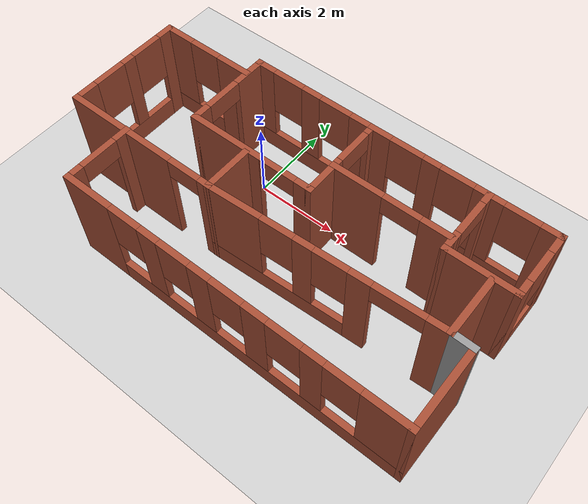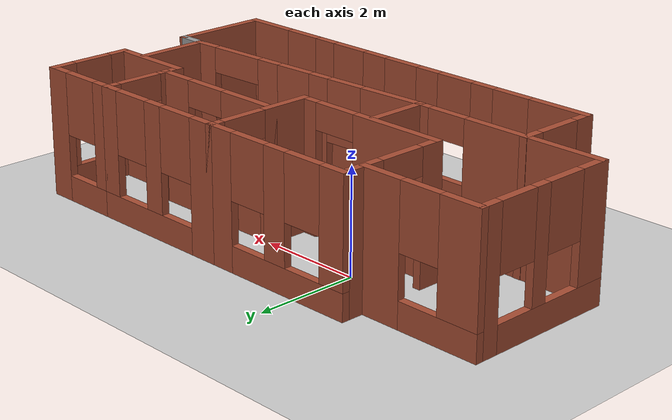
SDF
<sdf version="1.6">
 <world name="default">
  <model name="ground_plane">
   <static>1</static>
   <link name="link">
    <collision name="collision">
     <geometry><plane><normal>0 0 1</normal><size>100 100</size></plane></geometry>
     <surface><friction><ode><mu>100</mu><mu2>50</mu2></ode></friction></surface>
    </collision>
    <visual name="visual">
     <transparency>1</transparency>
     <cast_shadows>0</cast_shadows>
     <geometry><plane><normal>0 0 1</normal><size>100 100</size></plane></geometry>
     <material>
      <script><uri>file://media/materials/scripts/gazebo.material</uri><name>Gazebo/Grey</name></script>
     </material>
    </visual>
   </link>
  </model>
  <model name="new_building">
   <pose>1.52799 -1.2 0 0 -0 0</pose>
   <link name="Wall_46">
    <pose>-1.035 2.44 0 0 -0 3.14159</pose>
    <visual name="Wall_46_Visual_0">
     <pose>-1.3125 0 1.25 0 -0 0</pose>
     <geometry><box><size>0.625 0.15 2.5</size></box></geometry>
     <material>
      <script><uri>file://media/materials/scripts/gazebo.material</uri><name>Gazebo/Bricks</name></script>
      <ambient>1 1 1 1</ambient>
     </material>
     <meta><layer>0</layer></meta>
    </visual>
    <collision name="Wall_46_Collision_0">
     <geometry><box><size>0.625 0.15 2.5</size></box></geometry>
     <pose>-1.3125 0 1.25 0 -0 0</pose>
    </collision>
    <visual name="Wall_46_Visual_1">
     <pose>0.3125 0 0.25 0 -0 0</pose>
     <geometry><box><size>2.625 0.15 0.5</size></box></geometry>
     <material>
      <script><uri>file://media/materials/scripts/gazebo.material</uri><name>Gazebo/Bricks</name></script>
      <ambient>1 1 1 1</ambient>
     </material>
     <meta><layer>0</layer></meta>
    </visual>
    <collision name="Wall_46_Collision_1">
     <geometry><box><size>2.625 0.15 0.5</size></box></geometry>
     <pose>0.3125 0 0.25 0 -0 0</pose>
    </collision>
    <visual name="Wall_46_Visual_2">
     <pose>0.045 0 1.5 0 -0 0</pose>
     <geometry><box><size>0.49 0.15 2</size></box></geometry>
     <material>
      <script><uri>file://media/materials/scripts/gazebo.material</uri><name>Gazebo/Bricks</name></script>
      <ambient>1 1 1 1</ambient>
     </material>
     <meta><layer>0</layer></meta>
    </visual>
    <collision name="Wall_46_Collision_2">
     <geometry><box><size>0.49 0.15 2</size></box></geometry>
     <pose>0.045 0 1.5 0 -0 0</pose>
    </collision>
    <visual name="Wall_46_Visual_3">
     <pose>1.3575 0 1.5 0 -0 0</pose>
     <geometry><box><size>0.535 0.15 2</size></box></geometry>
     <material>
      <script><uri>file://media/materials/scripts/gazebo.material</uri><name>Gazebo/Bricks</name></script>
      <ambient>1 1 1 1</ambient>
     </material>
     <meta><layer>0</layer></meta>
    </visual>
    <collision name="Wall_46_Collision_3">
     <geometry><box><size>0.535 0.15 2</size></box></geometry>
     <pose>1.3575 0 1.5 0 -0 0</pose>
    </collision>
    <visual name="Wall_46_Visual_4">
     <pose>-0.6 0 1.9 0 -0 0</pose>
     <geometry><box><size>0.8 0.15 1.2</size></box></geometry>
     <material>
      <script><uri>file://media/materials/scripts/gazebo.material</uri><name>Gazebo/Bricks</name></script>
      <ambient>1 1 1 1</ambient>
     </material>
     <meta><layer>0</layer></meta>
    </visual>
    <collision name="Wall_46_Collision_4">
     <geometry><box><size>0.8 0.15 1.2</size></box></geometry>
     <pose>-0.6 0 1.9 0 -0 0</pose>
    </collision>
    <visual name="Wall_46_Visual_5">
     <pose>0.69 0 1.9 0 -0 0</pose>
     <geometry><box><size>0.8 0.15 1.2</size></box></geometry>
     <material>
      <script><uri>file://media/materials/scripts/gazebo.material</uri><name>Gazebo/Bricks</name></script>
      <ambient>1 1 1 1</ambient>
     </material>
     <meta><layer>0</layer></meta>
    </visual>
    <collision name="Wall_46_Collision_5">
     <geometry><box><size>0.8 0.15 1.2</size></box></geometry>
     <pose>0.69 0 1.9 0 -0 0</pose>
    </collision>
   </link>
   <link name="Wall_47">
    <pose>-2.585 1.39 0 0 0 -1.5708</pose>
    <visual name="Wall_47_Visual_0">
     <pose>-0.6875 0 1.25 0 -0 0</pose>
     <geometry><box><size>0.875 0.15 2.5</size></box></geometry>
     <material>
      <script><uri>file://media/materials/scripts/gazebo.material</uri><name>Gazebo/Bricks</name></script>
      <ambient>1 1 1 1</ambient>
     </material>
     <meta><layer>0</layer></meta>
    </visual>
    <collision name="Wall_47_Collision_0">
     <geometry><box><size>0.875 0.15 2.5</size></box></geometry>
     <pose>-0.6875 0 1.25 0 -0 0</pose>
    </collision>
    <visual name="Wall_47_Visual_1">
     <pose>0.8875 0 1.25 0 -0 0</pose>
     <geometry><box><size>0.475 0.15 2.5</size></box></geometry>
     <material>
      <script><uri>file://media/materials/scripts/gazebo.material</uri><name>Gazebo/Bricks</name></script>
      <ambient>1 1 1 1</ambient>
     </material>
     <meta><layer>0</layer></meta>
    </visual>
    <collision name="Wall_47_Collision_1">
     <geometry><box><size>0.475 0.15 2.5</size></box></geometry>
     <pose>0.8875 0 1.25 0 -0 0</pose>
    </collision>
    <visual name="Wall_47_Visual_2">
     <pose>0.2 0 2.25 0 -0 0</pose>
     <geometry><box><size>0.9 0.15 0.5</size></box></geometry>
     <material>
      <script><uri>file://media/materials/scripts/gazebo.material</uri><name>Gazebo/Bricks</name></script>
      <ambient>1 1 1 1</ambient>
     </material>
     <meta><layer>0</layer></meta>
    </visual>
    <collision name="Wall_47_Collision_2">
     <geometry><box><size>0.9 0.15 0.5</size></box></geometry>
     <pose>0.2 0 2.25 0 -0 0</pose>
    </collision>
   </link>
   <link name="Wall_51">
    <pose>-1.035 0.34 0 0 -0 0</pose>
    <visual name="Wall_51_Visual_0">
     <pose>-0.6725 0 1.25 0 -0 0</pose>
     <geometry><box><size>1.905 0.15 2.5</size></box></geometry>
     <material>
      <script><uri>file://media/materials/scripts/gazebo.material</uri><name>Gazebo/Bricks</name></script>
      <ambient>1 1 1 1</ambient>
     </material>
     <meta><layer>0</layer></meta>
    </visual>
    <collision name="Wall_51_Collision_0">
     <geometry><box><size>1.905 0.15 2.5</size></box></geometry>
     <pose>-0.6725 0 1.25 0 -0 0</pose>
    </collision>
    <visual name="Wall_51_Visual_1">
     <pose>1.4025 0 1.25 0 -0 0</pose>
     <geometry><box><size>0.445 0.15 2.5</size></box></geometry>
     <material>
      <script><uri>file://media/materials/scripts/gazebo.material</uri><name>Gazebo/Bricks</name></script>
      <ambient>1 1 1 1</ambient>
     </material>
     <meta><layer>0</layer></meta>
    </visual>
    <collision name="Wall_51_Collision_1">
     <geometry><box><size>0.445 0.15 2.5</size></box></geometry>
     <pose>1.4025 0 1.25 0 -0 0</pose>
    </collision>
    <visual name="Wall_51_Visual_2">
     <pose>0.73 0 2.25 0 -0 0</pose>
     <geometry><box><size>0.9 0.15 0.5</size></box></geometry>
     <material>
      <script><uri>file://media/materials/scripts/gazebo.material</uri><name>Gazebo/Bricks</name></script>
      <ambient>1 1 1 1</ambient>
     </material>
     <meta><layer>0</layer></meta>
    </visual>
    <collision name="Wall_51_Collision_2">
     <geometry><box><size>0.9 0.15 0.5</size></box></geometry>
     <pose>0.73 0 2.25 0 -0 0</pose>
    </collision>
   </link>
   <link name="Wall_52">
    <pose>0.515 1.39 0 0 -0 1.5708</pose>
    <visual name="Wall_52_Visual_0">
     <pose>-0.5975 0 1.25 0 -0 0</pose>
     <geometry><box><size>1.055 0.15 2.5</size></box></geometry>
     <material>
      <script><uri>file://media/materials/scripts/gazebo.material</uri><name>Gazebo/Bricks</name></script>
      <ambient>1 1 1 1</ambient>
     </material>
     <meta><layer>0</layer></meta>
    </visual>
    <collision name="Wall_52_Collision_0">
     <geometry><box><size>1.055 0.15 2.5</size></box></geometry>
     <pose>-0.5975 0 1.25 0 -0 0</pose>
    </collision>
    <visual name="Wall_52_Visual_1">
     <pose>0.9775 0 1.25 0 -0 0</pose>
     <geometry><box><size>0.295 0.15 2.5</size></box></geometry>
     <material>
      <script><uri>file://media/materials/scripts/gazebo.material</uri><name>Gazebo/Bricks</name></script>
      <ambient>1 1 1 1</ambient>
     </material>
     <meta><layer>0</layer></meta>
    </visual>
    <collision name="Wall_52_Collision_1">
     <geometry><box><size>0.295 0.15 2.5</size></box></geometry>
     <pose>0.9775 0 1.25 0 -0 0</pose>
    </collision>
    <visual name="Wall_52_Visual_2">
     <pose>0.38 0 2.25 0 -0 0</pose>
     <geometry><box><size>0.9 0.15 0.5</size></box></geometry>
     <material>
      <script><uri>file://media/materials/scripts/gazebo.material</uri><name>Gazebo/Bricks</name></script>
      <ambient>1 1 1 1</ambient>
     </material>
     <meta><layer>0</layer></meta>
    </visual>
    <collision name="Wall_52_Collision_2">
     <geometry><box><size>0.9 0.15 0.5</size></box></geometry>
     <pose>0.38 0 2.25 0 -0 0</pose>
    </collision>
   </link>
   <link name="Wall_53">
    <pose>1.94 2.44 0 0 -0 0</pose>
    <visual name="Wall_53_Visual_0">
     <pose>-1.2125 0 1.25 0 -0 0</pose>
     <geometry><box><size>0.575 0.15 2.5</size></box></geometry>
     <material>
      <script><uri>file://media/materials/scripts/gazebo.material</uri><name>Gazebo/Bricks</name></script>
      <ambient>1 1 1 1</ambient>
     </material>
     <meta><layer>0</layer></meta>
    </visual>
    <collision name="Wall_53_Collision_0">
     <geometry><box><size>0.575 0.15 2.5</size></box></geometry>
     <pose>-1.2125 0 1.25 0 -0 0</pose>
    </collision>
    <visual name="Wall_53_Visual_1">
     <pose>0.2875 0 0.25 0 -0 0</pose>
     <geometry><box><size>2.425 0.15 0.5</size></box></geometry>
     <material>
      <script><uri>file://media/materials/scripts/gazebo.material</uri><name>Gazebo/Bricks</name></script>
      <ambient>1 1 1 1</ambient>
     </material>
     <meta><layer>0</layer></meta>
    </visual>
    <collision name="Wall_53_Collision_1">
     <geometry><box><size>2.425 0.15 0.5</size></box></geometry>
     <pose>0.2875 0 0.25 0 -0 0</pose>
    </collision>
    <visual name="Wall_53_Visual_2">
     <pose>0.085 0 1.5 0 -0 0</pose>
     <geometry><box><size>0.42 0.15 2</size></box></geometry>
     <material>
      <script><uri>file://media/materials/scripts/gazebo.material</uri><name>Gazebo/Bricks</name></script>
      <ambient>1 1 1 1</ambient>
     </material>
     <meta><layer>0</layer></meta>
    </visual>
    <collision name="Wall_53_Collision_2">
     <geometry><box><size>0.42 0.15 2</size></box></geometry>
     <pose>0.085 0 1.5 0 -0 0</pose>
    </collision>
    <visual name="Wall_53_Visual_3">
     <pose>1.2975 0 1.5 0 -0 0</pose>
     <geometry><box><size>0.405 0.15 2</size></box></geometry>
     <material>
      <script><uri>file://media/materials/scripts/gazebo.material</uri><name>Gazebo/Bricks</name></script>
      <ambient>1 1 1 1</ambient>
     </material>
     <meta><layer>0</layer></meta>
    </visual>
    <collision name="Wall_53_Collision_3">
     <geometry><box><size>0.405 0.15 2</size></box></geometry>
     <pose>1.2975 0 1.5 0 -0 0</pose>
    </collision>
    <visual name="Wall_53_Visual_4">
     <pose>-0.525 0 1.9 0 -0 0</pose>
     <geometry><box><size>0.8 0.15 1.2</size></box></geometry>
     <material>
      <script><uri>file://media/materials/scripts/gazebo.material</uri><name>Gazebo/Bricks</name></script>
      <ambient>1 1 1 1</ambient>
     </material>
     <meta><layer>0</layer></meta>
    </visual>
    <collision name="Wall_53_Collision_4">
     <geometry><box><size>0.8 0.15 1.2</size></box></geometry>
     <pose>-0.525 0 1.9 0 -0 0</pose>
    </collision>
    <visual name="Wall_53_Visual_5">
     <pose>0.695 0 1.9 0 -0 0</pose>
     <geometry><box><size>0.8 0.15 1.2</size></box></geometry>
     <material>
      <script><uri>file://media/materials/scripts/gazebo.material</uri><name>Gazebo/Bricks</name></script>
      <ambient>1 1 1 1</ambient>
     </material>
     <meta><layer>0</layer></meta>
    </visual>
    <collision name="Wall_53_Collision_5">
     <geometry><box><size>0.8 0.15 1.2</size></box></geometry>
     <pose>0.695 0 1.9 0 -0 0</pose>
    </collision>
   </link>
   <link name="Wall_54">
    <pose>3.365 1.64 0 0 0 -1.5708</pose>
    <visual name="Wall_54_Visual_0">
     <pose>-0.7175 0 1.25 0 -0 0</pose>
     <geometry><box><size>0.315 0.15 2.5</size></box></geometry>
     <material>
      <script><uri>file://media/materials/scripts/gazebo.material</uri><name>Gazebo/Bricks</name></script>
      <ambient>1 1 1 1</ambient>
     </material>
     <meta><layer>0</layer></meta>
    </visual>
    <collision name="Wall_54_Collision_0">
     <geometry><box><size>0.315 0.15 2.5</size></box></geometry>
     <pose>-0.7175 0 1.25 0 -0 0</pose>
    </collision>
    <visual name="Wall_54_Visual_1">
     <pose>0.6075 0 1.25 0 -0 0</pose>
     <geometry><box><size>0.535 0.15 2.5</size></box></geometry>
     <material>
      <script><uri>file://media/materials/scripts/gazebo.material</uri><name>Gazebo/Bricks</name></script>
      <ambient>1 1 1 1</ambient>
     </material>
     <meta><layer>0</layer></meta>
    </visual>
    <collision name="Wall_54_Collision_1">
     <geometry><box><size>0.535 0.15 2.5</size></box></geometry>
     <pose>0.6075 0 1.25 0 -0 0</pose>
    </collision>
    <visual name="Wall_54_Visual_2">
     <pose>-0.11 0 2.25 0 -0 0</pose>
     <geometry><box><size>0.9 0.15 0.5</size></box></geometry>
     <material>
      <script><uri>file://media/materials/scripts/gazebo.material</uri><name>Gazebo/Bricks</name></script>
      <ambient>1 1 1 1</ambient>
     </material>
     <meta><layer>0</layer></meta>
    </visual>
    <collision name="Wall_54_Collision_2">
     <geometry><box><size>0.9 0.15 0.5</size></box></geometry>
     <pose>-0.11 0 2.25 0 -0 0</pose>
    </collision>
   </link>
   <link name="Wall_55">
    <collision name="Wall_55_Collision">
     <geometry><box><size>1.75 0.15 2.5</size></box></geometry>
     <pose>0 0 1.25 0 -0 0</pose>
    </collision>
    <visual name="Wall_55_Visual">
     <pose>0 0 1.25 0 -0 0</pose>
     <geometry><box><size>1.75 0.15 2.5</size></box></geometry>
     <material>
      <script><uri>file://media/materials/scripts/gazebo.material</uri><name>Gazebo/Bricks</name></script>
      <ambient>1 1 1 1</ambient>
     </material>
     <meta><layer>0</layer></meta>
    </visual>
    <pose>4.165 0.84 0 0 -0 0</pose>
   </link>
   <link name="Wall_56">
    <pose>4.965 1.64 0 0 -0 1.5708</pose>
    <visual name="Wall_56_Visual_0">
     <pose>-0.6525 0 1.25 0 -0 0</pose>
     <geometry><box><size>0.445 0.15 2.5</size></box></geometry>
     <material>
      <script><uri>file://media/materials/scripts/gazebo.material</uri><name>Gazebo/Bricks</name></script>
      <ambient>1 1 1 1</ambient>
     </material>
     <meta><layer>0</layer></meta>
    </visual>
    <collision name="Wall_56_Collision_0">
     <geometry><box><size>0.445 0.15 2.5</size></box></geometry>
     <pose>-0.6525 0 1.25 0 -0 0</pose>
    </collision>
    <visual name="Wall_56_Visual_1">
     <pose>0.2225 0 0.25 0 -0 0</pose>
     <geometry><box><size>1.305 0.15 0.5</size></box></geometry>
     <material>
      <script><uri>file://media/materials/scripts/gazebo.material</uri><name>Gazebo/Bricks</name></script>
      <ambient>1 1 1 1</ambient>
     </material>
     <meta><layer>0</layer></meta>
    </visual>
    <collision name="Wall_56_Collision_1">
     <geometry><box><size>1.305 0.15 0.5</size></box></geometry>
     <pose>0.2225 0 0.25 0 -0 0</pose>
    </collision>
    <visual name="Wall_56_Visual_2">
     <pose>0.6225 0 1.5 0 -0 0</pose>
     <geometry><box><size>0.505 0.15 2</size></box></geometry>
     <material>
      <script><uri>file://media/materials/scripts/gazebo.material</uri><name>Gazebo/Bricks</name></script>
      <ambient>1 1 1 1</ambient>
     </material>
     <meta><layer>0</layer></meta>
    </visual>
    <collision name="Wall_56_Collision_2">
     <geometry><box><size>0.505 0.15 2</size></box></geometry>
     <pose>0.6225 0 1.5 0 -0 0</pose>
    </collision>
    <visual name="Wall_56_Visual_3">
     <pose>-0.03 0 1.9 0 -0 0</pose>
     <geometry><box><size>0.8 0.15 1.2</size></box></geometry>
     <material>
      <script><uri>file://media/materials/scripts/gazebo.material</uri><name>Gazebo/Bricks</name></script>
      <ambient>1 1 1 1</ambient>
     </material>
     <meta><layer>0</layer></meta>
    </visual>
    <collision name="Wall_56_Collision_3">
     <geometry><box><size>0.8 0.15 1.2</size></box></geometry>
     <pose>-0.03 0 1.9 0 -0 0</pose>
    </collision>
   </link>
   <link name="Wall_57">
    <pose>4.165 2.44 0 0 0 -3.14159</pose>
    <visual name="Wall_57_Visual_0">
     <pose>-0.6175 0 1.25 0 -0 0</pose>
     <geometry><box><size>0.515 0.15 2.5</size></box></geometry>
     <material>
      <script><uri>file://media/materials/scripts/gazebo.material</uri><name>Gazebo/Bricks</name></script>
      <ambient>1 1 1 1</ambient>
     </material>
     <meta><layer>0</layer></meta>
    </visual>
    <collision name="Wall_57_Collision_0">
     <geometry><box><size>0.515 0.15 2.5</size></box></geometry>
     <pose>-0.6175 0 1.25 0 -0 0</pose>
    </collision>
    <visual name="Wall_57_Visual_1">
     <pose>0.2575 0 0.25 0 -0 0</pose>
     <geometry><box><size>1.235 0.15 0.5</size></box></geometry>
     <material>
      <script><uri>file://media/materials/scripts/gazebo.material</uri><name>Gazebo/Bricks</name></script>
      <ambient>1 1 1 1</ambient>
     </material>
     <meta><layer>0</layer></meta>
    </visual>
    <collision name="Wall_57_Collision_1">
     <geometry><box><size>1.235 0.15 0.5</size></box></geometry>
     <pose>0.2575 0 0.25 0 -0 0</pose>
    </collision>
    <visual name="Wall_57_Visual_2">
     <pose>0.6575 0 1.5 0 -0 0</pose>
     <geometry><box><size>0.435 0.15 2</size></box></geometry>
     <material>
      <script><uri>file://media/materials/scripts/gazebo.material</uri><name>Gazebo/Bricks</name></script>
      <ambient>1 1 1 1</ambient>
     </material>
     <meta><layer>0</layer></meta>
    </visual>
    <collision name="Wall_57_Collision_2">
     <geometry><box><size>0.435 0.15 2</size></box></geometry>
     <pose>0.6575 0 1.5 0 -0 0</pose>
    </collision>
    <visual name="Wall_57_Visual_3">
     <pose>0.04 0 1.9 0 -0 0</pose>
     <geometry><box><size>0.8 0.15 1.2</size></box></geometry>
     <material>
      <script><uri>file://media/materials/scripts/gazebo.material</uri><name>Gazebo/Bricks</name></script>
      <ambient>1 1 1 1</ambient>
     </material>
     <meta><layer>0</layer></meta>
    </visual>
    <collision name="Wall_57_Collision_3">
     <geometry><box><size>0.8 0.15 1.2</size></box></geometry>
     <pose>0.04 0 1.9 0 -0 0</pose>
    </collision>
   </link>
   <link name="Wall_59">
    <pose>1.94 1.12 0 0 -0 0</pose>
    <visual name="Wall_59_Visual_0">
     <pose>-0.8475 0 1.25 0 -0 0</pose>
     <geometry><box><size>1.305 0.15 2.5</size></box></geometry>
     <material>
      <script><uri>file://media/materials/scripts/gazebo.material</uri><name>Gazebo/Bricks</name></script>
      <ambient>1 1 1 1</ambient>
     </material>
     <meta><layer>0</layer></meta>
    </visual>
    <collision name="Wall_59_Collision_0">
     <geometry><box><size>1.305 0.15 2.5</size></box></geometry>
     <pose>-0.8475 0 1.25 0 -0 0</pose>
    </collision>
    <visual name="Wall_59_Visual_1">
     <pose>1.1025 0 1.25 0 -0 0</pose>
     <geometry><box><size>0.795 0.15 2.5</size></box></geometry>
     <material>
      <script><uri>file://media/materials/scripts/gazebo.material</uri><name>Gazebo/Bricks</name></script>
      <ambient>1 1 1 1</ambient>
     </material>
     <meta><layer>0</layer></meta>
    </visual>
    <collision name="Wall_59_Collision_1">
     <geometry><box><size>0.795 0.15 2.5</size></box></geometry>
     <pose>1.1025 0 1.25 0 -0 0</pose>
    </collision>
    <visual name="Wall_59_Visual_2">
     <pose>0.255 0 2.25 0 -0 0</pose>
     <geometry><box><size>0.9 0.15 0.5</size></box></geometry>
     <material>
      <script><uri>file://media/materials/scripts/gazebo.material</uri><name>Gazebo/Bricks</name></script>
      <ambient>1 1 1 1</ambient>
     </material>
     <meta><layer>0</layer></meta>
    </visual>
    <collision name="Wall_59_Collision_2">
     <geometry><box><size>0.9 0.15 0.5</size></box></geometry>
     <pose>0.255 0 2.25 0 -0 0</pose>
    </collision>
   </link>
   <link name="Wall_61">
    <pose>-3.79 2 0 0 -0 3.14159</pose>
    <visual name="Wall_61_Visual_0">
     <pose>-0.8075 0 1.25 0 -0 0</pose>
     <geometry><box><size>0.885 0.15 2.5</size></box></geometry>
     <material>
      <script><uri>file://media/materials/scripts/gazebo.material</uri><name>Gazebo/Bricks</name></script>
      <ambient>1 1 1 1</ambient>
     </material>
     <meta><layer>0</layer></meta>
    </visual>
    <collision name="Wall_61_Collision_0">
     <geometry><box><size>0.885 0.15 2.5</size></box></geometry>
     <pose>-0.8075 0 1.25 0 -0 0</pose>
    </collision>
    <visual name="Wall_61_Visual_1">
     <pose>0.4425 0 0.25 0 -0 0</pose>
     <geometry><box><size>1.615 0.15 0.5</size></box></geometry>
     <material>
      <script><uri>file://media/materials/scripts/gazebo.material</uri><name>Gazebo/Bricks</name></script>
      <ambient>1 1 1 1</ambient>
     </material>
     <meta><layer>0</layer></meta>
    </visual>
    <collision name="Wall_61_Collision_1">
     <geometry><box><size>1.615 0.15 0.5</size></box></geometry>
     <pose>0.4425 0 0.25 0 -0 0</pose>
    </collision>
    <visual name="Wall_61_Visual_2">
     <pose>0.8425 0 1.5 0 -0 0</pose>
     <geometry><box><size>0.815 0.15 2</size></box></geometry>
     <material>
      <script><uri>file://media/materials/scripts/gazebo.material</uri><name>Gazebo/Bricks</name></script>
      <ambient>1 1 1 1</ambient>
     </material>
     <meta><layer>0</layer></meta>
    </visual>
    <collision name="Wall_61_Collision_2">
     <geometry><box><size>0.815 0.15 2</size></box></geometry>
     <pose>0.8425 0 1.5 0 -0 0</pose>
    </collision>
    <visual name="Wall_61_Visual_3">
     <pose>0.035 0 1.9 0 -0 0</pose>
     <geometry><box><size>0.8 0.15 1.2</size></box></geometry>
     <material>
      <script><uri>file://media/materials/scripts/gazebo.material</uri><name>Gazebo/Bricks</name></script>
      <ambient>1 1 1 1</ambient>
     </material>
     <meta><layer>0</layer></meta>
    </visual>
    <collision name="Wall_61_Collision_3">
     <geometry><box><size>0.8 0.15 1.2</size></box></geometry>
     <pose>0.035 0 1.9 0 -0 0</pose>
    </collision>
   </link>
   <link name="Wall_62">
    <pose>-4.965 0.575001 0 0 0 -1.5708</pose>
    <visual name="Wall_62_Visual_0">
     <pose>-1.2675 0 1.25 0 -0 0</pose>
     <geometry><box><size>0.465 0.15 2.5</size></box></geometry>
     <material>
      <script><uri>file://media/materials/scripts/gazebo.material</uri><name>Gazebo/Bricks</name></script>
      <ambient>1 1 1 1</ambient>
     </material>
     <meta><layer>0</layer></meta>
    </visual>
    <collision name="Wall_62_Collision_0">
     <geometry><box><size>0.465 0.15 2.5</size></box></geometry>
     <pose>-1.2675 0 1.25 0 -0 0</pose>
    </collision>
    <visual name="Wall_62_Visual_1">
     <pose>0.2325 0 0.25 0 -0 0</pose>
     <geometry><box><size>2.535 0.15 0.5</size></box></geometry>
     <material>
      <script><uri>file://media/materials/scripts/gazebo.material</uri><name>Gazebo/Bricks</name></script>
      <ambient>1 1 1 1</ambient>
     </material>
     <meta><layer>0</layer></meta>
    </visual>
    <collision name="Wall_62_Collision_1">
     <geometry><box><size>2.535 0.15 0.5</size></box></geometry>
     <pose>0.2325 0 0.25 0 -0 0</pose>
    </collision>
    <visual name="Wall_62_Visual_2">
     <pose>-0.075 0 1.5 0 -0 0</pose>
     <geometry><box><size>0.32 0.15 2</size></box></geometry>
     <material>
      <script><uri>file://media/materials/scripts/gazebo.material</uri><name>Gazebo/Bricks</name></script>
      <ambient>1 1 1 1</ambient>
     </material>
     <meta><layer>0</layer></meta>
    </visual>
    <collision name="Wall_62_Collision_2">
     <geometry><box><size>0.32 0.15 2</size></box></geometry>
     <pose>-0.075 0 1.5 0 -0 0</pose>
    </collision>
    <visual name="Wall_62_Visual_3">
     <pose>1.1925 0 1.5 0 -0 0</pose>
     <geometry><box><size>0.615 0.15 2</size></box></geometry>
     <material>
      <script><uri>file://media/materials/scripts/gazebo.material</uri><name>Gazebo/Bricks</name></script>
      <ambient>1 1 1 1</ambient>
     </material>
     <meta><layer>0</layer></meta>
    </visual>
    <collision name="Wall_62_Collision_3">
     <geometry><box><size>0.615 0.15 2</size></box></geometry>
     <pose>1.1925 0 1.5 0 -0 0</pose>
    </collision>
    <visual name="Wall_62_Visual_4">
     <pose>-0.635 0 1.9 0 -0 0</pose>
     <geometry><box><size>0.8 0.15 1.2</size></box></geometry>
     <material>
      <script><uri>file://media/materials/scripts/gazebo.material</uri><name>Gazebo/Bricks</name></script>
      <ambient>1 1 1 1</ambient>
     </material>
     <meta><layer>0</layer></meta>
    </visual>
    <collision name="Wall_62_Collision_4">
     <geometry><box><size>0.8 0.15 1.2</size></box></geometry>
     <pose>-0.635 0 1.9 0 -0 0</pose>
    </collision>
    <visual name="Wall_62_Visual_5">
     <pose>0.485 0 1.9 0 -0 0</pose>
     <geometry><box><size>0.8 0.15 1.2</size></box></geometry>
     <material>
      <script><uri>file://media/materials/scripts/gazebo.material</uri><name>Gazebo/Bricks</name></script>
      <ambient>1 1 1 1</ambient>
     </material>
     <meta><layer>0</layer></meta>
    </visual>
    <collision name="Wall_62_Collision_5">
     <geometry><box><size>0.8 0.15 1.2</size></box></geometry>
     <pose>0.485 0 1.9 0 -0 0</pose>
    </collision>
   </link>
   <link name="Wall_63">
    <pose>-3.04 -0.85 0 0 -0 0</pose>
    <visual name="Wall_63_Visual_0">
     <pose>-0.5725 0 1.25 0 -0 0</pose>
     <geometry><box><size>2.855 0.15 2.5</size></box></geometry>
     <material>
      <script><uri>file://media/materials/scripts/gazebo.material</uri><name>Gazebo/Bricks</name></script>
      <ambient>1 1 1 1</ambient>
     </material>
     <meta><layer>0</layer></meta>
    </visual>
    <collision name="Wall_63_Collision_0">
     <geometry><box><size>2.855 0.15 2.5</size></box></geometry>
     <pose>-0.5725 0 1.25 0 -0 0</pose>
    </collision>
    <visual name="Wall_63_Visual_1">
     <pose>1.8325 0 1.25 0 -0 0</pose>
     <geometry><box><size>0.335 0.15 2.5</size></box></geometry>
     <material>
      <script><uri>file://media/materials/scripts/gazebo.material</uri><name>Gazebo/Bricks</name></script>
      <ambient>1 1 1 1</ambient>
     </material>
     <meta><layer>0</layer></meta>
    </visual>
    <collision name="Wall_63_Collision_1">
     <geometry><box><size>0.335 0.15 2.5</size></box></geometry>
     <pose>1.8325 0 1.25 0 -0 0</pose>
    </collision>
    <visual name="Wall_63_Visual_2">
     <pose>1.26 0 2.25 0 -0 0</pose>
     <geometry><box><size>0.81 0.15 0.5</size></box></geometry>
     <material>
      <script><uri>file://media/materials/scripts/gazebo.material</uri><name>Gazebo/Bricks</name></script>
      <ambient>1 1 1 1</ambient>
     </material>
     <meta><layer>0</layer></meta>
    </visual>
    <collision name="Wall_63_Collision_2">
     <geometry><box><size>0.81 0.15 0.5</size></box></geometry>
     <pose>1.26 0 2.25 0 -0 0</pose>
    </collision>
   </link>
   <link name="Wall_64">
    <collision name="Wall_64_Collision">
     <geometry><box><size>1.25 0.15 2.5</size></box></geometry>
     <pose>0 0 1.25 0 -0 0</pose>
    </collision>
    <visual name="Wall_64_Visual">
     <pose>0 0 1.25 0 -0 0</pose>
     <geometry><box><size>1.25 0.15 2.5</size></box></geometry>
     <material>
      <script><uri>file://media/materials/scripts/gazebo.material</uri><name>Gazebo/Bricks</name></script>
      <ambient>1 1 1 1</ambient>
     </material>
     <meta><layer>0</layer></meta>
    </visual>
    <pose>-1.115 -0.299999 0 0 -0 1.5708</pose>
   </link>
   <link name="Wall_66">
    <collision name="Wall_66_Collision">
     <geometry><box><size>1.5 0.15 2.5</size></box></geometry>
     <pose>0 0 1.25 0 -0 0</pose>
    </collision>
    <visual name="Wall_66_Visual">
     <pose>0 0 1.25 0 -0 0</pose>
     <geometry><box><size>1.5 0.15 2.5</size></box></geometry>
     <material>
      <script><uri>file://media/materials/scripts/gazebo.material</uri><name>Gazebo/Bricks</name></script>
      <ambient>1 1 1 1</ambient>
     </material>
     <meta><layer>0</layer></meta>
    </visual>
    <pose>4.415 0.095001 0 0 0 -1.5708</pose>
   </link>
   <link name="Wall_67">
    <pose>1.65 -0.715 0 0 0 -3.09281</pose>
    <visual name="Wall_67_Visual_0">
     <pose>-2.56239 0 1.25 0 -0 0</pose>
     <geometry><box><size>0.561814 0.15 2.5</size></box></geometry>
     <material>
      <script><uri>file://media/materials/scripts/gazebo.material</uri><name>Gazebo/Bricks</name></script>
      <ambient>1 1 1 1</ambient>
     </material>
     <meta><layer>0</layer></meta>
    </visual>
    <collision name="Wall_67_Collision_0">
     <geometry><box><size>0.561814 0.15 2.5</size></box></geometry>
     <pose>-2.56239 0 1.25 0 -0 0</pose>
    </collision>
    <visual name="Wall_67_Visual_1">
     <pose>-0.860469 0 1.25 0 -0 0</pose>
     <geometry><box><size>0.513864 0.15 2.5</size></box></geometry>
     <material>
      <script><uri>file://media/materials/scripts/gazebo.material</uri><name>Gazebo/Bricks</name></script>
      <ambient>1 1 1 1</ambient>
     </material>
     <meta><layer>0</layer></meta>
    </visual>
    <collision name="Wall_67_Collision_1">
     <geometry><box><size>0.513864 0.15 2.5</size></box></geometry>
     <pose>-0.860469 0 1.25 0 -0 0</pose>
    </collision>
    <visual name="Wall_67_Visual_2">
     <pose>1.11988 0 0.25 0 -0 0</pose>
     <geometry><box><size>3.44683 0.15 0.5</size></box></geometry>
     <material>
      <script><uri>file://media/materials/scripts/gazebo.material</uri><name>Gazebo/Bricks</name></script>
      <ambient>1 1 1 1</ambient>
     </material>
     <meta><layer>0</layer></meta>
    </visual>
    <collision name="Wall_67_Collision_2">
     <geometry><box><size>3.44683 0.15 0.5</size></box></geometry>
     <pose>1.11988 0 0.25 0 -0 0</pose>
    </collision>
    <visual name="Wall_67_Visual_3">
     <pose>0.427176 0 1.5 0 -0 0</pose>
     <geometry><box><size>0.461427 0.15 2</size></box></geometry>
     <material>
      <script><uri>file://media/materials/scripts/gazebo.material</uri><name>Gazebo/Bricks</name></script>
      <ambient>1 1 1 1</ambient>
     </material>
     <meta><layer>0</layer></meta>
    </visual>
    <collision name="Wall_67_Collision_3">
     <geometry><box><size>0.461427 0.15 2</size></box></geometry>
     <pose>0.427176 0 1.5 0 -0 0</pose>
    </collision>
    <visual name="Wall_67_Visual_4">
     <pose>2.15059 0 1.5 0 -0 0</pose>
     <geometry><box><size>1.3854 0.15 2</size></box></geometry>
     <material>
      <script><uri>file://media/materials/scripts/gazebo.material</uri><name>Gazebo/Bricks</name></script>
      <ambient>1 1 1 1</ambient>
     </material>
     <meta><layer>0</layer></meta>
    </visual>
    <collision name="Wall_67_Collision_4">
     <geometry><box><size>1.3854 0.15 2</size></box></geometry>
     <pose>2.15059 0 1.5 0 -0 0</pose>
    </collision>
    <visual name="Wall_67_Visual_5">
     <pose>-0.203537 0 1.9 0 -0 0</pose>
     <geometry><box><size>0.8 0.15 1.2</size></box></geometry>
     <material>
      <script><uri>file://media/materials/scripts/gazebo.material</uri><name>Gazebo/Bricks</name></script>
      <ambient>1 1 1 1</ambient>
     </material>
     <meta><layer>0</layer></meta>
    </visual>
    <collision name="Wall_67_Collision_5">
     <geometry><box><size>0.8 0.15 1.2</size></box></geometry>
     <pose>-0.203537 0 1.9 0 -0 0</pose>
    </collision>
    <visual name="Wall_67_Visual_6">
     <pose>1.05789 0 1.9 0 -0 0</pose>
     <geometry><box><size>0.8 0.15 1.2</size></box></geometry>
     <material>
      <script><uri>file://media/materials/scripts/gazebo.material</uri><name>Gazebo/Bricks</name></script>
      <ambient>1 1 1 1</ambient>
     </material>
     <meta><layer>0</layer></meta>
    </visual>
    <collision name="Wall_67_Collision_6">
     <geometry><box><size>0.8 0.15 1.2</size></box></geometry>
     <pose>1.05789 0 1.9 0 -0 0</pose>
    </collision>
    <visual name="Wall_67_Visual_7">
     <pose>-1.69944 0 2.25 0 -0 0</pose>
     <geometry><box><size>1.16408 0.15 0.5</size></box></geometry>
     <material>
      <script><uri>file://media/materials/scripts/gazebo.material</uri><name>Gazebo/Bricks</name></script>
      <ambient>1 1 1 1</ambient>
     </material>
     <meta><layer>0</layer></meta>
    </visual>
    <collision name="Wall_67_Collision_7">
     <geometry><box><size>1.16408 0.15 0.5</size></box></geometry>
     <pose>-1.69944 0 2.25 0 -0 0</pose>
    </collision>
   </link>
   <link name="Wall_70">
    <pose>-3.455 -1.64 0 0 0 -1.5708</pose>
    <visual name="Wall_70_Visual_0">
     <pose>-0.6625 0 1.25 0 -0 0</pose>
     <geometry><box><size>0.425 0.15 2.5</size></box></geometry>
     <material>
      <script><uri>file://media/materials/scripts/gazebo.material</uri><name>Gazebo/Bricks</name></script>
      <ambient>1 1 1 1</ambient>
     </material>
     <meta><layer>0</layer></meta>
    </visual>
    <collision name="Wall_70_Collision_0">
     <geometry><box><size>0.425 0.15 2.5</size></box></geometry>
     <pose>-0.6625 0 1.25 0 -0 0</pose>
    </collision>
    <visual name="Wall_70_Visual_1">
     <pose>0.6625 0 1.25 0 -0 0</pose>
     <geometry><box><size>0.425 0.15 2.5</size></box></geometry>
     <material>
      <script><uri>file://media/materials/scripts/gazebo.material</uri><name>Gazebo/Bricks</name></script>
      <ambient>1 1 1 1</ambient>
     </material>
     <meta><layer>0</layer></meta>
    </visual>
    <collision name="Wall_70_Collision_1">
     <geometry><box><size>0.425 0.15 2.5</size></box></geometry>
     <pose>0.6625 0 1.25 0 -0 0</pose>
    </collision>
    <visual name="Wall_70_Visual_2">
     <pose>-0 0 2.25 0 -0 0</pose>
     <geometry><box><size>0.9 0.15 0.5</size></box></geometry>
     <material>
      <script><uri>file://media/materials/scripts/gazebo.material</uri><name>Gazebo/Bricks</name></script>
      <ambient>1 1 1 1</ambient>
     </material>
     <meta><layer>0</layer></meta>
    </visual>
    <collision name="Wall_70_Collision_2">
     <geometry><box><size>0.9 0.15 0.5</size></box></geometry>
     <pose>-0 0 2.25 0 -0 0</pose>
    </collision>
   </link>
   <link name="Wall_71">
    <pose>0.72 -2.44 0 0 -0 0</pose>
    <visual name="Wall_71_Visual_0">
     <pose>-3.6125 0 1.25 0 -0 0</pose>
     <geometry><box><size>1.275 0.15 2.5</size></box></geometry>
     <material>
      <script><uri>file://media/materials/scripts/gazebo.material</uri><name>Gazebo/Bricks</name></script>
      <ambient>1 1 1 1</ambient>
     </material>
     <meta><layer>0</layer></meta>
    </visual>
    <collision name="Wall_71_Collision_0">
     <geometry><box><size>1.275 0.15 2.5</size></box></geometry>
     <pose>-3.6125 0 1.25 0 -0 0</pose>
    </collision>
    <visual name="Wall_71_Visual_1">
     <pose>0.6375 0 0.25 0 -0 0</pose>
     <geometry><box><size>7.225 0.15 0.5</size></box></geometry>
     <material>
      <script><uri>file://media/materials/scripts/gazebo.material</uri><name>Gazebo/Bricks</name></script>
      <ambient>1 1 1 1</ambient>
     </material>
     <meta><layer>0</layer></meta>
    </visual>
    <collision name="Wall_71_Collision_1">
     <geometry><box><size>7.225 0.15 0.5</size></box></geometry>
     <pose>0.6375 0 0.25 0 -0 0</pose>
    </collision>
    <visual name="Wall_71_Visual_2">
     <pose>-1.92 0 1.5 0 -0 0</pose>
     <geometry><box><size>0.51 0.15 2</size></box></geometry>
     <material>
      <script><uri>file://media/materials/scripts/gazebo.material</uri><name>Gazebo/Bricks</name></script>
      <ambient>1 1 1 1</ambient>
     </material>
     <meta><layer>0</layer></meta>
    </visual>
    <collision name="Wall_71_Collision_2">
     <geometry><box><size>0.51 0.15 2</size></box></geometry>
     <pose>-1.92 0 1.5 0 -0 0</pose>
    </collision>
    <visual name="Wall_71_Visual_3">
     <pose>-0.6 0 1.5 0 -0 0</pose>
     <geometry><box><size>0.53 0.15 2</size></box></geometry>
     <material>
      <script><uri>file://media/materials/scripts/gazebo.material</uri><name>Gazebo/Bricks</name></script>
      <ambient>1 1 1 1</ambient>
     </material>
     <meta><layer>0</layer></meta>
    </visual>
    <collision name="Wall_71_Collision_3">
     <geometry><box><size>0.53 0.15 2</size></box></geometry>
     <pose>-0.6 0 1.5 0 -0 0</pose>
    </collision>
    <visual name="Wall_71_Visual_4">
     <pose>0.75 0 1.5 0 -0 0</pose>
     <geometry><box><size>0.57 0.15 2</size></box></geometry>
     <material>
      <script><uri>file://media/materials/scripts/gazebo.material</uri><name>Gazebo/Bricks</name></script>
      <ambient>1 1 1 1</ambient>
     </material>
     <meta><layer>0</layer></meta>
    </visual>
    <collision name="Wall_71_Collision_4">
     <geometry><box><size>0.57 0.15 2</size></box></geometry>
     <pose>0.75 0 1.5 0 -0 0</pose>
    </collision>
    <visual name="Wall_71_Visual_5">
     <pose>2.085 0 1.5 0 -0 0</pose>
     <geometry><box><size>0.5 0.15 2</size></box></geometry>
     <material>
      <script><uri>file://media/materials/scripts/gazebo.material</uri><name>Gazebo/Bricks</name></script>
      <ambient>1 1 1 1</ambient>
     </material>
     <meta><layer>0</layer></meta>
    </visual>
    <collision name="Wall_71_Collision_5">
     <geometry><box><size>0.5 0.15 2</size></box></geometry>
     <pose>2.085 0 1.5 0 -0 0</pose>
    </collision>
    <visual name="Wall_71_Visual_6">
     <pose>3.6925 0 1.5 0 -0 0</pose>
     <geometry><box><size>1.115 0.15 2</size></box></geometry>
     <material>
      <script><uri>file://media/materials/scripts/gazebo.material</uri><name>Gazebo/Bricks</name></script>
      <ambient>1 1 1 1</ambient>
     </material>
     <meta><layer>0</layer></meta>
    </visual>
    <collision name="Wall_71_Collision_6">
     <geometry><box><size>1.115 0.15 2</size></box></geometry>
     <pose>3.6925 0 1.5 0 -0 0</pose>
    </collision>
    <visual name="Wall_71_Visual_7">
     <pose>-2.575 0 1.9 0 -0 0</pose>
     <geometry><box><size>0.8 0.15 1.2</size></box></geometry>
     <material>
      <script><uri>file://media/materials/scripts/gazebo.material</uri><name>Gazebo/Bricks</name></script>
      <ambient>1 1 1 1</ambient>
     </material>
     <meta><layer>0</layer></meta>
    </visual>
    <collision name="Wall_71_Collision_7">
     <geometry><box><size>0.8 0.15 1.2</size></box></geometry>
     <pose>-2.575 0 1.9 0 -0 0</pose>
    </collision>
    <visual name="Wall_71_Visual_8">
     <pose>-1.265 0 1.9 0 -0 0</pose>
     <geometry><box><size>0.8 0.15 1.2</size></box></geometry>
     <material>
      <script><uri>file://media/materials/scripts/gazebo.material</uri><name>Gazebo/Bricks</name></script>
      <ambient>1 1 1 1</ambient>
     </material>
     <meta><layer>0</layer></meta>
    </visual>
    <collision name="Wall_71_Collision_8">
     <geometry><box><size>0.8 0.15 1.2</size></box></geometry>
     <pose>-1.265 0 1.9 0 -0 0</pose>
    </collision>
    <visual name="Wall_71_Visual_9">
     <pose>0.065 0 1.9 0 -0 0</pose>
     <geometry><box><size>0.8 0.15 1.2</size></box></geometry>
     <material>
      <script><uri>file://media/materials/scripts/gazebo.material</uri><name>Gazebo/Bricks</name></script>
      <ambient>1 1 1 1</ambient>
     </material>
     <meta><layer>0</layer></meta>
    </visual>
    <collision name="Wall_71_Collision_9">
     <geometry><box><size>0.8 0.15 1.2</size></box></geometry>
     <pose>0.065 0 1.9 0 -0 0</pose>
    </collision>
    <visual name="Wall_71_Visual_10">
     <pose>1.435 0 1.9 0 -0 0</pose>
     <geometry><box><size>0.8 0.15 1.2</size></box></geometry>
     <material>
      <script><uri>file://media/materials/scripts/gazebo.material</uri><name>Gazebo/Bricks</name></script>
      <ambient>1 1 1 1</ambient>
     </material>
     <meta><layer>0</layer></meta>
    </visual>
    <collision name="Wall_71_Collision_10">
     <geometry><box><size>0.8 0.15 1.2</size></box></geometry>
     <pose>1.435 0 1.9 0 -0 0</pose>
    </collision>
    <visual name="Wall_71_Visual_11">
     <pose>2.735 0 1.9 0 -0 0</pose>
     <geometry><box><size>0.8 0.15 1.2</size></box></geometry>
     <material>
      <script><uri>file://media/materials/scripts/gazebo.material</uri><name>Gazebo/Bricks</name></script>
      <ambient>1 1 1 1</ambient>
     </material>
     <meta><layer>0</layer></meta>
    </visual>
    <collision name="Wall_71_Collision_11">
     <geometry><box><size>0.8 0.15 1.2</size></box></geometry>
     <pose>2.735 0 1.9 0 -0 0</pose>
    </collision>
   </link>
   <link name="Wall_72">
    <collision name="Wall_72_Collision">
     <geometry><box><size>2 0.15 2.5</size></box></geometry>
     <pose>0 0 1.25 0 -0 0</pose>
    </collision>
    <visual name="Wall_72_Visual">
     <pose>0 0 1.25 0 -0 0</pose>
     <geometry><box><size>2 0.15 2.5</size></box></geometry>
     <material>
      <script><uri>file://media/materials/scripts/gazebo.material</uri><name>Gazebo/Bricks</name></script>
      <ambient>1 1 1 1</ambient>
     </material>
     <meta><layer>0</layer></meta>
    </visual>
    <pose>4.895 -1.515 0 0 -0 1.5708</pose>
   </link>
   <link name="Wall_73">
    <collision name="Wall_73_Collision">
     <geometry><box><size>0.630104 0.15 2.5</size></box></geometry>
     <pose>0 0 1.25 0 -0 0</pose>
    </collision>
    <visual name="Wall_73_Visual">
     <pose>0 0 1.25 0 -0 0</pose>
     <geometry><box><size>0.630104 0.15 2.5</size></box></geometry>
     <material>
      <script><uri>file://media/materials/scripts/gazebo.material</uri><name>Gazebo/Grey</name></script>
      <ambient>1 1 1 1</ambient>
     </material>
     <meta><layer>0</layer></meta>
    </visual>
    <pose>4.655 -0.585 0 0 -0 3.12076</pose>
   </link>
   <static>1</static>
  </model>
 </world>
</sdf>
